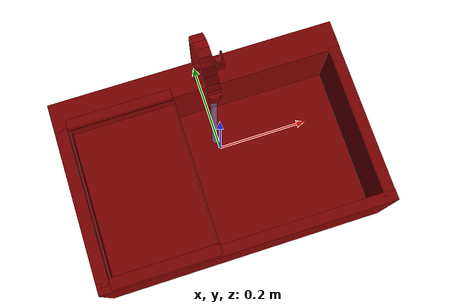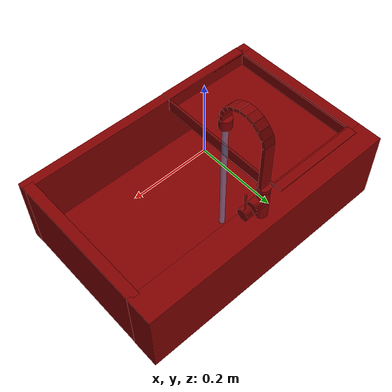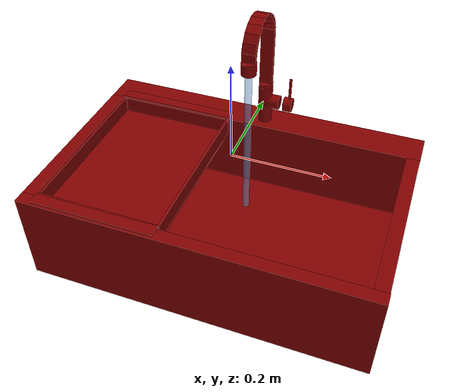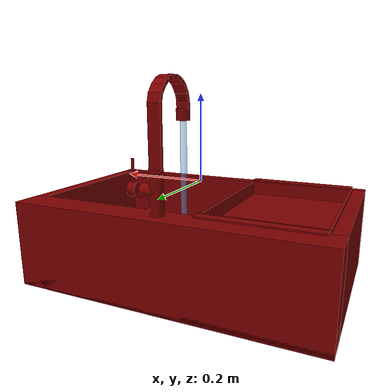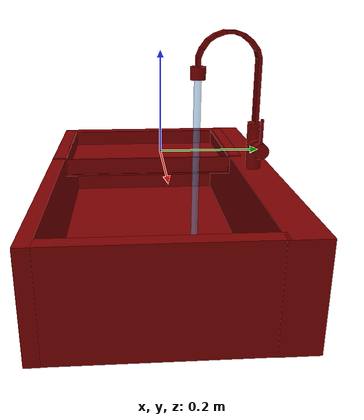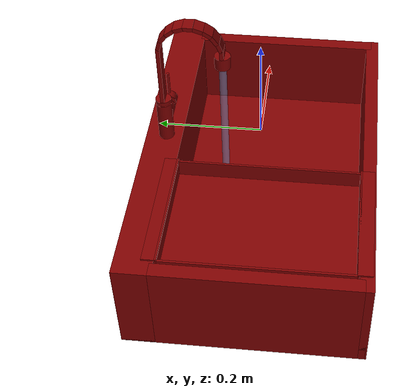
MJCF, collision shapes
<?xml version='1.0' encoding='UTF-8'?>
<mujoco model="model">
  <option timestep="0.002" gravity="0.0 0.0 -9.81"/>
  <compiler angle="radian"/>
  <asset>
    <mesh file="visuals/handle.obj" name="handle_vis"/>
    <mesh file="visuals/Body001.obj" name="Body001_vis"/>
    <mesh file="visuals/Container001.obj" name="Container001_vis"/>
    <mesh file="visuals/spout.obj" name="spout_vis"/>
    <texture file="visuals/T_BC001.png" name="Body001_material" type="2d"/>
    <material name="Body001_material" rgba="1 1 1 1.0" texture="Body001_material" shininess="0.141421377658844" specular="1"/>
    <texture file="visuals/T_BC001.png" name="handle_material" type="2d"/>
    <material name="handle_material" rgba="1 1 1 1.0" texture="handle_material" shininess="0.141421377658844" specular="1"/>
    <texture file="visuals/T_BC001.png" name="Container001_material" type="2d"/>
    <material name="Container001_material" rgba="1 1 1 1.0" texture="Container001_material" shininess="0.141421377658844" specular="2"/>
    <texture file="visuals/T_BC001.png" name="spout_material" type="2d"/>
    <material name="spout_material" rgba="1 1 1 1.0" texture="spout_material" shininess="0.141421377658844" specular="1"/>
  </asset>
  <default>
    <default class="visual">
      <geom conaffinity="0" contype="0" group="1" type="mesh"/>
    </default>
    <default class="collision">
      <geom group="0" rgba="0.5 0 0 0.5" solimp="0.998 0.998 0.001" solref="0.001 2"/>
    </default>
    <default class="spawn">
      <geom group="0" rgba="1 1 1 0.5" contype="0" conaffinity="0"/>
      <site group="0" rgba="1 1 1 0.5"/>
    </default>
    <default class="region">
      <geom group="1" conaffinity="0" contype="0" rgba="0 1 0 0"/>
    </default>
  </default>
  <worldbody>
    <body>
      <body name="object">
        <geom mesh="Body001_vis" type="mesh" solimp="0.998 0.998 0.001" solref="0.001 1" friction="0.95 0.3 0.1" class="visual" material="Body001_material"/>
        <geom class="collision" type="box" pos="0.0002236486179754138 -0.2177063524723053 -0.1361895501613617" size="0.35395723581314087 0.013200338929891586 0.10039255768060684" quat="1.0 0.0 0.0 0.0"/>
        <geom class="collision" type="box" pos="-0.0005787868285551667 0.001557469367980957 -0.21551337838172913" size="0.3531548082828522 0.2291497141122818 0.021068738773465157" quat="1.0 0.0 0.0 0.0"/>
        <geom class="collision" type="box" pos="0.0002236486179754138 0.19493809342384338 -0.1361895501613617" size="0.35395723581314087 0.03576909750699997 0.10039255768060684" quat="1.0 0.0 0.0 0.0"/>
        <geom class="collision" type="box" pos="-0.339741587638855 -0.02451847493648529 -0.1361895501613617" size="0.013992075808346272 0.19041675329208374 0.10039255768060684" quat="1.0 0.0 0.0 0.0"/>
        <geom class="collision" type="box" pos="0.33977633714675903 -0.02451847493648529 -0.1361895501613617" size="0.013678034767508507 0.19041675329208374 0.10039255768060684" quat="1.0 0.0 0.0 0.0"/>
        <geom class="collision" type="cylinder" pos="0.008839156478643417 0.1905600130558014 0.006005296483635902" size="0.015300664119422436 0.042066384106874466" quat="1.0 0.0 0.0 0.0"/>
        <geom class="collision" type="cylinder" pos="0.023573370650410652 0.1905600130558014 0.01319047436118126" size="0.015300665982067585 0.017341306433081627" quat="0.7071068286895752 0.0 -0.7071067690849304 0.0"/>
        <body name="handle">
          <joint axis="1.0 0.0 0.0" pos="0.05906230956315994 0.19032001495361328 0.012800361961126328" limited="true" name="handle_temp_joint" type="hinge" range="-0.7853981633974483 0.7853981633974483" damping="0.5" frictionloss="1" armature="2"/>
          <joint axis="0.0 1.0 0.0" pos="0.05906230956315994 0.19032001495361328 0.012800361961126328" limited="true" name="handle_joint" type="hinge" range="0 0.5" damping="0.5" frictionloss="1" armature="2"/>
          <geom mesh="handle_vis" type="mesh" solimp="0.998 0.998 0.001" solref="0.001 1" friction="0.95 0.3 0.1" class="visual" material="handle_material"/>
          <geom class="collision" type="cylinder" pos="0.05993214622139931 0.1905600130558014 0.01319047436118126" size="0.015300667844712734 0.009021526202559471" quat="0.7071068286895752 0.0 -0.7071067690849304 0.0"/>
          <geom name="handle_main" class="collision" type="cylinder" pos="0.06259022653102875 0.19027121365070343 0.051185812801122665" size="0.003057922935113311 0.02486662194132805" quat="7.549790126404332e-08 -0.0 -1.0 -0.0"/>
        </body>
        <body name="Container001">
          <joint axis="0.0 0.0 1.0" pos="-0.193882018327713 -0.02310939133167267 -0.05167678743600845" limited="true" name="Container001_joint" range="0.0 0.1" type="slide" damping="1" frictionloss="1" armature=".01" stiffness="0.05"/>
          <geom mesh="Container001_vis" type="mesh" solimp="0.998 0.998 0.001" solref="0.001 1" friction="0.95 0.3 0.1" class="visual" material="Container001_material"/>
          <geom class="collision" type="box" pos="-0.1939459890127182 -0.022472580894827843 -0.06992444396018982" size="0.12832015752792358 0.18015123903751373 0.0020639626309275627" quat="1.0 0.0 0.0 0.0"/>
          <geom class="collision" type="box" pos="-0.1939459890127182 -0.20150455832481384 -0.051240816712379456" size="0.12832015752792358 0.0017774796579033136 0.02072480507194996" quat="1.0 0.0 0.0 0.0"/>
          <geom class="collision" type="box" pos="-0.1939459890127182 0.15606608986854553 -0.051240816712379456" size="0.12832015752792358 0.0017774796579033136 0.02072480507194996" quat="1.0 0.0 0.0 0.0"/>
          <geom class="collision" type="box" pos="-0.1939459890127182 -0.21370342373847961 -0.0321321077644825" size="0.12832015752792358 0.013976345770061016 0.001616097055375576" quat="1.0 0.0 0.0 0.0"/>
          <geom class="collision" type="box" pos="-0.1939459890127182 0.16761654615402222 -0.03262577950954437" size="0.12832015752792358 0.013976345770061016 0.001616097055375576" quat="1.0 0.0 0.0 0.0"/>
          <geom class="collision" type="box" pos="-0.06785516440868378 -0.022472580894827843 -0.05299340933561325" size="0.0022293413057923317 0.18015123903751373 0.019003160297870636" quat="1.0 0.0 0.0 0.0"/>
          <geom class="collision" type="box" pos="-0.31990814208984375 -0.022472580894827843 -0.05299340933561325" size="0.0022293413057923317 0.18015123903751373 0.019003160297870636" quat="1.0 0.0 0.0 0.0"/>
        </body>
        <body name="spout">
          <joint axis="0.0 0.0 1.0" pos="0.008679701946675777 0.19031986594200134 0.14020773768424988" limited="true" name="spout_joint" range="-1.0471975511965976 1.0471975511965976" type="hinge" damping="10"/>
          <site type="cylinder" rgba="0.5 0.75 1 0.5" size="0.007279556710273027 0.18189847469329834" pos="0.00860593281686306 0.07199980318546295 -0.0347701758146286" name="water"/>
          <geom mesh="spout_vis" type="mesh" solimp="0.998 0.998 0.001" solref="0.001 1" friction="0.95 0.3 0.1" class="visual" material="spout_material"/>
          <geom class="collision" type="cylinder" pos="0.008839156478643417 0.1905600130558014 0.054274123162031174" size="0.015300664119422436 0.004239031113684177" quat="1.0 0.0 0.0 0.0"/>
          <geom class="collision" type="box" pos="0.00868565496057272 0.19022472202777863 0.1219596117734909" size="0.014188715256750584 0.0037829584907740355 0.06361408531665802" quat="1.0 0.0 0.0 0.0" name="spout_main"/>
          <geom class="collision" type="box" pos="0.00868565496057272 0.18784454464912415 0.1929425299167633" size="0.014188697561621666 0.003859864315018058 0.009694489650428295" quat="0.9901295304298401 0.14015524089336395 0.0 0.0"/>
          <geom class="collision" type="box" pos="0.00868565496057272 0.17919452488422394 0.20913836359977722" size="0.014188697561621666 0.003834041766822338 0.009684526361525059" quat="0.9466893672943115 0.3221478760242462 0.0 0.0"/>
          <geom class="collision" type="box" pos="0.00868565496057272 0.16576509177684784 0.2223837524652481" size="0.014188697561621666 0.0038910070434212685 0.009706424549221992" quat="0.8968712091445923 0.4422917664051056 0.0 0.0"/>
          <geom class="collision" type="box" pos="0.008685656823217869 0.14963063597679138 0.23115645349025726" size="0.014188701286911964 0.003931689541786909 0.009721888229250908" quat="0.8145753145217896 0.5800578594207764 0.0 0.0"/>
          <geom class="collision" type="box" pos="0.00868565496057272 0.13216862082481384 0.23423366248607635" size="0.014188707806169987 0.00969205517321825 0.0038535341154783964" quat="1.0 0.0 0.0 0.0"/>
          <geom class="collision" type="box" pos="0.00868565496057272 0.11398517340421677 0.23158344626426697" size="0.014188699424266815 0.003997397609055042 0.009746549651026726" quat="0.576590359210968 0.8170334100723267 0.0 0.0"/>
          <geom class="collision" type="box" pos="0.008685656823217869 0.0973299965262413 0.22383397817611694" size="0.014188701286911964 0.0038774432614445686 0.009701238945126534" quat="0.4736131727695465 0.8807329535484314 0.0 0.0"/>
          <geom class="collision" type="box" pos="0.008685656823217869 0.08439585566520691 0.2112576961517334" size="0.014188701286911964 0.004022641107439995 0.009755922481417656" quat="0.3026302456855774 0.9531080722808838 0.0 0.0"/>
          <geom class="collision" type="box" pos="0.008685656823217869 0.07527550309896469 0.1957060843706131" size="0.014188702218234539 0.003971736412495375 0.009736965410411358" quat="0.1847800761461258 0.9827799201011658 0.0 0.0"/>
          <geom class="collision" type="box" pos="0.00868565496057272 0.0718502402305603 0.17960229516029358" size="0.014188701286911964 0.0038539832457900047 0.009692225605249405" quat="0.004763779696077108 0.9999886751174927 0.0 0.0"/>
          <geom class="collision" type="cylinder" pos="0.008839156478643417 0.07221023738384247 0.15753813087940216" size="0.015300664119422436 0.01267433911561966" quat="1.0 0.0 0.0 0.0"/>
        </body>
        <geom class="region" name="reg_basin" type="box" pos="0.1302766278386116 -0.02216951549053192 -0.11553307436406612" size="0.19125128334760666 0.17728327012062073 0.0789289249330759"/>
        <geom class="region" name="reg_main" type="box" pos="-2.2143125022466847e-07 9.53674295089968e-09 -0.13636097311973572" size="0.3554895052909851 0.23280751502513886 0.10234555399417877"/>
      </body>
    </body>
  </worldbody>
  <actuator>
    <motor name="handle_joint_actuator" joint="handle_joint" gear="10"/>
    <motor name="handle_temp_joint_actuator" joint="handle_temp_joint" gear="10"/>
    <motor name="Container001_joint_actuator" joint="Container001_joint" gear="10"/>
    <motor name="spout_joint_actuator" joint="spout_joint" gear="10"/>
  </actuator>
</mujoco>
